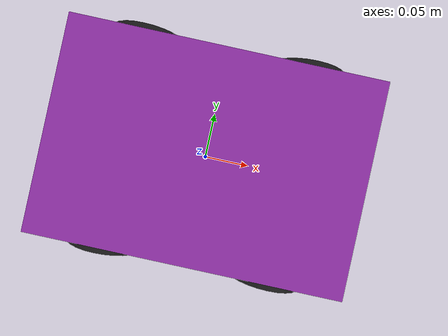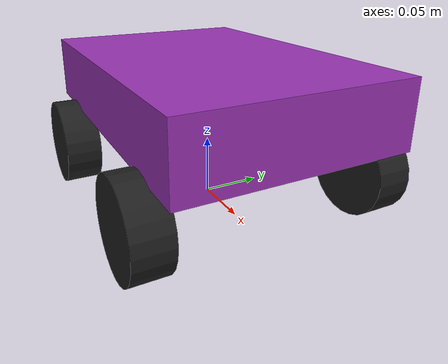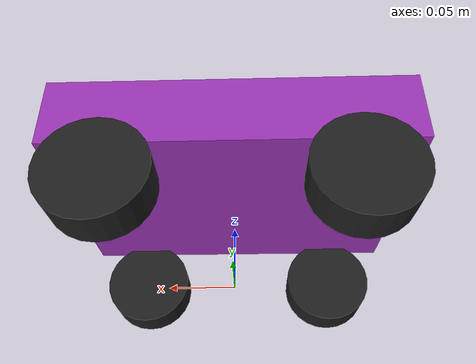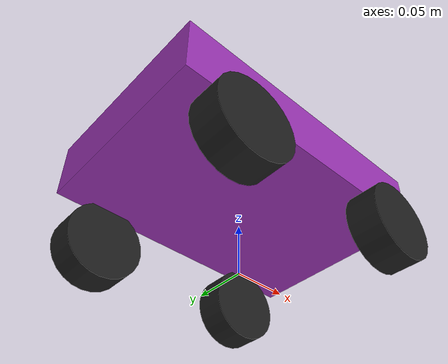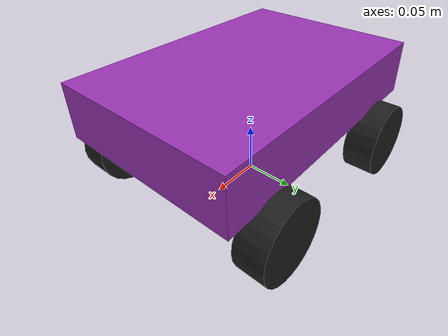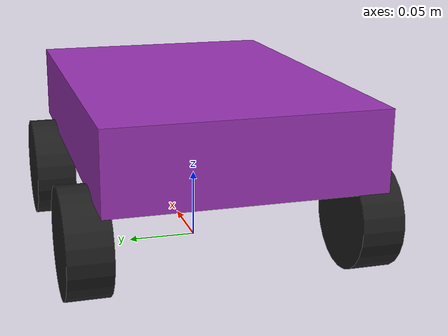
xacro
<?xml version="1.0"?>
<robot xmlns:xacro="http://www.ros.org/wiki/xacro">

  <xacro:include filename="inertial_macros.xacro"/>

  <!-- base link -->

  <link name="base_link">
  </link>

  <!-- base_footprint link -->

  <joint name="base_footprint_joint" type="fixed">
    <parent link="base_link"/>
    <child link="base_footprint"/>
    <origin xyz="0 0 0" rpy="0 0 0"/>
  </joint>

  <link name="base_footprint">
  </link>

  <!-- chassis link -->

  <joint name="chassis_joint" type="fixed">
    <parent link="base_link"/>
    <child link="chassis"/>
    <origin xyz="0 0 0.0975"/>
  </joint>

  <link name="chassis">
    <visual>
      <origin xyz="0 0 0" />
      <geometry>
        <box size="0.27 0.185 0.055" />
      </geometry>
      <material name="purple" />
    </visual>
    <collision>
      <origin xyz="0 0 0"/>
      <geometry>
        <box size="0.27 0.185 0.055"/>
      </geometry>
    </collision>
    <xacro:inertial_box mass="0.5" x="0.27" y="0.185" z="0.055">
      <origin xyz="0 0 0" rpy="0 0 0"/>
    </xacro:inertial_box>
  </link>

  <gazebo reference="chassis">
    <material>Gazebo/Purple</material>
  </gazebo>

  <!-- left rear wheel -->

  <joint name="left_wheel_joint" type="fixed">
    <origin xyz="-0.085 0.0975 0.0375" rpy="-${pi/2} 0 0" />
    <parent link="base_link" />
    <child link="left_wheel_link" />
    <axis xyz="0 0 1" />
  </joint>

  <link name="left_wheel_link">
    <visual>
      <origin xyz="0 0 0" rpy="0 0 0" />
      <geometry>
        <cylinder radius="0.0375" length="0.03" />
      </geometry>
      <material name="black" />
    </visual>
    <collision>
      <geometry>
        <cylinder radius="0.0375" length="0.03" />
      </geometry>
    </collision>
    <xacro:inertial_cylinder mass="0.1" length="0.03" radius="0.0375">
      <origin xyz="0 0 0" rpy="0 0 0"/>
    </xacro:inertial_cylinder>
  </link>

  <gazebo reference="left_wheel_link">
    <material>Gazebo/Black</material>
  </gazebo>

  <!-- right rear wheel -->

  <joint name="right_wheel_joint" type="fixed">
    <origin xyz="-0.085 -0.0975 0.0375" rpy="${pi/2} 0 0" />
    <parent link="base_link" />
    <child link="right_wheel_link" />
    <axis xyz="0 0 -1" />
  </joint>

  <link name="right_wheel_link">
    <visual>
      <origin xyz="0 0 0" rpy="0 0 0" />
      <geometry>
        <cylinder radius="0.0375" length="0.03" />
      </geometry>
      <material name="black" />
    </visual>
    <collision>
      <geometry>
        <cylinder radius="0.0375" length="0.03" />
      </geometry>
    </collision>
    <xacro:inertial_cylinder mass="0.1" length="0.03" radius="0.0375">
      <origin xyz="0 0 0" rpy="0 0 0"/>
    </xacro:inertial_cylinder>
  </link>

  <gazebo reference="right_wheel_link">
    <material>Gazebo/Black</material>
  </gazebo>

  <!-- left front wheel -->

  <joint name="left_front_joint" type="fixed">
    <origin xyz="0.085 0.0975 0.0375" rpy="-${pi/2} 0 0" />
    <parent link="base_link" />
    <child link="left_front_link" />
    <axis xyz="0 0 1" />
  </joint>

  <link name="left_front_link">
    <visual>
      <origin xyz="0 0 0" rpy="0 0 0" />
      <geometry>
        <cylinder radius="0.0375" length="0.03" />
      </geometry>
      <material name="black" />
    </visual>
    <collision>
      <geometry>
        <cylinder radius="0.0375" length="0.03" />
      </geometry>
    </collision>
    <xacro:inertial_cylinder mass="0.1" length="0.03" radius="0.0375">
      <origin xyz="0 0 0" rpy="0 0 0"/>
    </xacro:inertial_cylinder>
  </link>

  <gazebo reference="left_front_link">
    <material>Gazebo/Black</material>
  </gazebo>

  <!-- right front wheel -->

  <joint name="right_front_joint" type="fixed">
    <origin xyz="0.085 -0.0975 0.0375" rpy="${pi/2} 0 0" />
    <parent link="base_link" />
    <child link="right_front_link" />
    <axis xyz="0 0 -1" />
  </joint>

  <link name="right_front_link">
    <visual>
      <origin xyz="0 0 0" rpy="0 0 0" />
      <geometry>
        <cylinder radius="0.0375" length="0.03" />
      </geometry>
      <material name="black" />
    </visual>
    <collision>
      <geometry>
        <cylinder radius="0.0375" length="0.03" />
      </geometry>
    </collision>
    <xacro:inertial_cylinder mass="0.1" length="0.03" radius="0.0375">
      <origin xyz="0 0 0" rpy="0 0 0"/>
    </xacro:inertial_cylinder>
  </link>

  <gazebo reference="right_front_link">
    <material>Gazebo/Black</material>
  </gazebo>

</robot>
